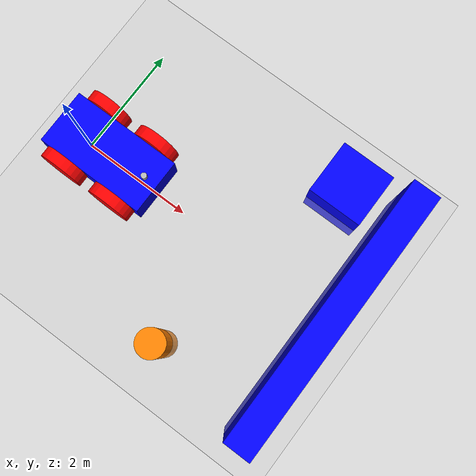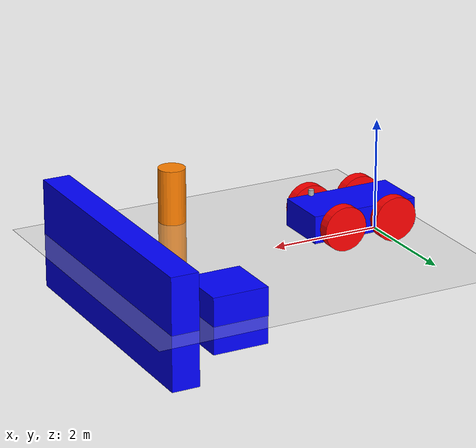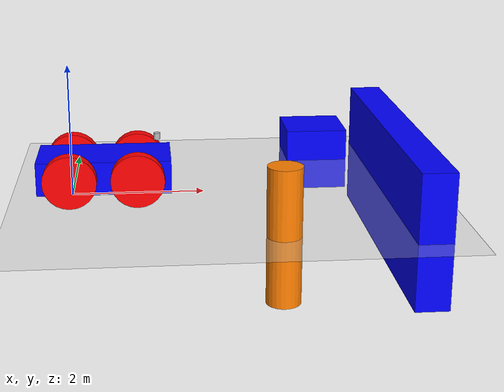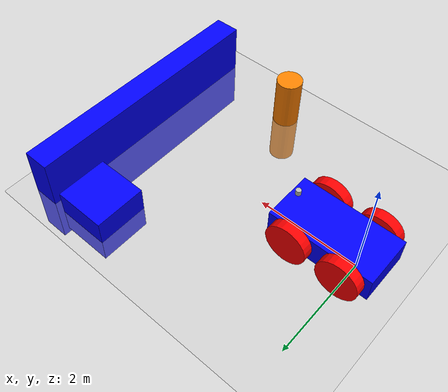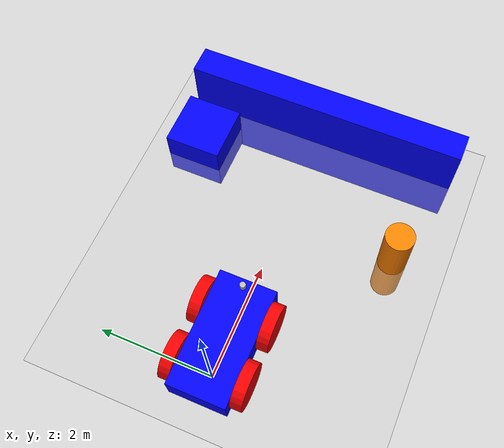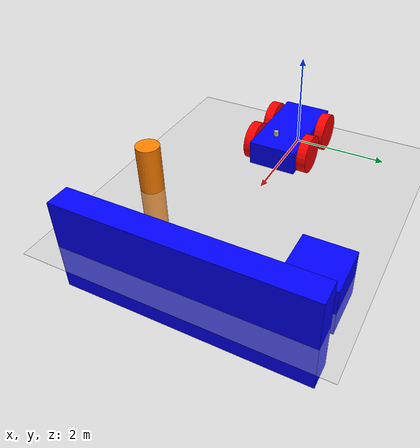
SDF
<?xml version="1.0" ?>
<sdf version="1.10">
    <world name="car_world">
        <physics name="1ms" type="ignored">
            <max_step_size>0.001</max_step_size>
            <real_time_factor>1.0</real_time_factor>
        </physics>

        <plugin filename="gz-sim-physics-system" name="gz::sim::systems::Physics">
        </plugin>
        <plugin filename="gz-sim-user-commands-system" name="gz::sim::systems::UserCommands">
        </plugin>
        <plugin filename="gz-sim-scene-broadcaster-system" name="gz::sim::systems::SceneBroadcaster">
        </plugin>
        <plugin filename="gz-sim-triggered-publisher-system"
            name="gz::sim::systems::TriggeredPublisher">
                <input type="gz.msgs.Int32" topic="/keyboard/keypress">
                    <match field="data">16777235</match>
                </input>
                <output type="gz.msgs.Twist" topic="/cmd_vel">
                    linear: {x: 0.5}, angular: {z: 0.0}
                </output>
        </plugin>
        <plugin filename="gz-sim-sensors-system" name="gz::sim::systems::Sensors">
        <render_engine>ogre2</render_engine>
        </plugin>

        <!-- Moving Backward-->
        <plugin filename="gz-sim-triggered-publisher-system"
                name="gz::sim::systems::TriggeredPublisher">
            <input type="gz.msgs.Int32" topic="/keyboard/keypress">
                <match field="data">16777237</match>
            </input>
            <output type="gz.msgs.Twist" topic="/cmd_vel">
                linear: {x: -0.5}, angular: {z: 0.0}
            </output>
        </plugin>

        <!-- Moving Forward-->
        <plugin filename="gz-sim-triggered-publisher-system"
                name="gz::sim::systems::TriggeredPublisher">
            <input type="gz.msgs.Int32" topic="/keyboard/keypress">
                <match field="data">16777235</match>
            </input>
            <output type="gz.msgs.Twist" topic="/cmd_vel">
                linear: {x: 0.5}, angular: {z: 0.0}
            </output>
        </plugin>

        <!-- Moving Left-->
        <plugin filename="gz-sim-triggered-publisher-system"
                name="gz::sim::systems::TriggeredPublisher">
            <input type="gz.msgs.Int32" topic="/keyboard/keypress">
                <match field="data">16777234</match>
            </input>
            <output type="gz.msgs.Twist" topic="/cmd_vel">
                linear: {x: 0.0}, angular: {z: 0.5}
            </output>
        </plugin>

        <!-- Moving Right-->
        <plugin filename="gz-sim-triggered-publisher-system"
                name="gz::sim::systems::TriggeredPublisher">
            <input type="gz.msgs.Int32" topic="/keyboard/keypress">
                <match field="data">16777236</match>
            </input>
            <output type="gz.msgs.Twist" topic="/cmd_vel">
                linear: {x: 0.0}, angular: {z: -0.5}
            </output>
        </plugin>

        <light type="directional" name="sun">
            <cast_shadows>true</cast_shadows>
            <pose>0 0 10 0 0 0</pose>
            <diffuse>0.8 0.8 0.8 1</diffuse>
            <specular>0.2 0.2 0.2 1</specular>
            <attenuation>
                <range>1000</range>
                <constant>0.9</constant>
                <linear>0.01</linear>
                <quadratic>0.001</quadratic>
            </attenuation>
            <direction>-0.5 0.1 -0.9</direction>
        </light>

        <model name="ground_plane">
            <static>true</static>
            <link name="link">
                <collision name="collision">
                <geometry>
                    <plane>
                    <normal>0 0 1</normal>
                    </plane>
                </geometry>
                </collision>
                <visual name="visual">
                <geometry>
                    <plane>
                    <normal>0 0 1</normal>
                    <size>100 100</size>
                    </plane>
                </geometry>
                <material>
                    <ambient>0.8 0.8 0.8 1</ambient>
                    <diffuse>0.8 0.8 0.8 1</diffuse>
                    <specular>0.8 0.8 0.8 1</specular>
                </material>
                </visual>
            </link>
        </model>

        <model name='wall'>
            <static>true</static>
            <pose>5 0 0 0 0 0</pose><!--pose relative to the world-->
            <link name='box'>
                <visual name='visual'>
                    <geometry>
                        <box>
                            <size>0.5 5.0 2.0</size>
                        </box>
                    </geometry>

                    <!--let's add color to our link-->
                    <material>
                        <ambient>0.0 0.0 1.0 1</ambient>
                        <diffuse>0.0 0.0 1.0 1</diffuse>
                        <specular>0.0 0.0 1.0 1</specular>
                    </material>
                </visual>

                <collision name='collision'>
                    <geometry>
                        <box>
                            <size>0.5 5.0 2.0</size>
                        </box>
                    </geometry>
                </collision>
            </link>
        </model>

        <model name='big_cylinder'>
            <static>true</static>
            <pose>3 -2 0 0 0 0</pose>
            <link name='cylinder'>
                <visual name='visual'>
                    <geometry>
                        <cylinder>
                            <radius>0.25</radius>
                            <length>2.0</length>
                        </cylinder>
                    </geometry>

                    <!--color-->
                    <material>
                        <ambient>1.0 0.5 0.0 1</ambient>
                        <diffuse>1.0 0.5 0.0 1</diffuse>
                        <specular>1.0 0.5 0.0 1</specular>
                    </material>
                </visual>

                <collision name='collision'>
                    <geometry>
                        <cylinder>
                            <radius>0.25</radius>
                            <length>2.0</length>
                        </cylinder>
                    </geometry>
                </collision>
            </link>
        </model>

        <model name='big_box'>
            <static>true</static>
            <pose>4 2 0 0 0 0</pose><!--pose relative to the world-->
            <link name='box'>
                <visual name='visual'>
                    <geometry>
                        <box>
                            <size>1 1 1</size>
                        </box>
                    </geometry>

                    <!--let's add color to our link-->
                    <material>
                        <ambient>0.0 0.0 1.0 1</ambient>
                        <diffuse>0.0 0.0 1.0 1</diffuse>
                        <specular>0.0 0.0 1.0 1</specular>
                    </material>
                </visual>

                <collision name='collision'>
                    <geometry>
                        <box>
                            <size>0.5 10.0 2.0</size>
                        </box>
                    </geometry>
                </collision>
            </link>
        </model>

        <model name="vehicle_blue" canonical_link="chassis">
            <pose relative_to="world">0 0 0 0 0 0</pose>

            <plugin filename="gz-sim-diff-drive-system" name="gz::sim::systems::DiffDrive">
                <left_joint>left_rear_wheel_joint</left_joint>
                <left_joint>left_front_wheel_joint</left_joint>
                <right_joint>right_rear_wheel_joint</right_joint>
                <right_joint>right_front_wheel_joint</right_joint>
                <wheel_separation>1.2</wheel_separation>
                <wheel_radius>0.4</wheel_radius>
                <odom_publish_frequency>1</odom_publish_frequency>
                <topic>cmd_vel</topic>
            </plugin>

            <!-- lidar -->
            <link name='lidar_link'>
                <pose relative_to='chassis'>0.8 0 0.5 0 0 0</pose>
                <inertial>
                    <mass>0.1</mass>
                    <inertia>
                        <ixx>0.000166667</ixx>
                        <iyy>0.000166667</iyy>
                        <izz>0.000166667</izz>
                    </inertia>
                </inertial>
                <visual name='visual'>
                    <geometry>
                        <cylinder>
                            <radius>0.05</radius>
                            <length>0.1</length>
                        </cylinder>
                    </geometry>
                </visual>
                <sensor name='gpu_lidar' type='gpu_lidar'>
                    <topic>lidar</topic>
                    <update_rate>10</update_rate>
                    <always_on>true</always_on>
                    <lidar>
                        <scan>
                            <horizontal>
                                <samples>640</samples>
                                <resolution>1</resolution>
                                <min_angle>-1.396263</min_angle>
                                <max_angle>1.396263</max_angle>
                            </horizontal>
                        </scan>
                        <range>
                            <min>0.08</min>
                            <max>10.0</max>
                        </range>
                    </lidar>
                    <visualize>true</visualize>
                </sensor>

            </link>

            <joint name='lidar_joint' type='fixed'>
                <parent>chassis</parent>
                <child>lidar_link</child>
            </joint>

            <!-- chassis -->
            <link name="chassis">
                <pose relative_to="__model__">0.5 0 0.4 0 0 0</pose>

                <inertial>
                    <mass>1.14395</mass>
                    <inertia>
                        <ixx>0.095329</ixx>
                        <ixy>0</ixy>
                        <ixz>0</ixz>
                        <iyy>0.381317</iyy>
                        <iyz>0</iyz>
                        <izz>0.476646</izz>
                    </inertia>
                </inertial>

                <visual name="visual">
                    <geometry>
                        <box>
                            <size>2.0 1.0 0.5</size>
                        </box>
                    </geometry>
                    <material>
                        <ambient>0.0 0.0 1.0 1</ambient>
                        <diffuse>0.0 0.0 1.0 1</diffuse>
                        <specular>0.0 0.0 1.0 1</specular>
                    </material>
                </visual>

                <collision name="collision">
                    <geometry>
                        <box>
                            <size>2.0 1.0 0.5</size>
                        </box>
                    </geometry>
                </collision>

            </link>

            <!-- left rear wheel -->
            <link name="left_rear_wheel">
                <pose relative_to="chassis">-0.5 0.6 0 -1.5707 0 0</pose>

                <inertial>
                    <mass>1</mass>
                    <inertia>
                        <ixx>0.043333</ixx>
                        <ixy>0</ixy>
                        <ixz>0</ixz>
                        <iyy>0.043333</iyy>
                        <iyz>0</iyz>
                        <izz>0.08</izz>
                    </inertia>
                </inertial>

                <visual name="visual">
                    <geometry>
                        <cylinder>
                            <radius>0.4</radius>
                            <length>0.2</length>
                        </cylinder>
                    </geometry>
                    <material>
                        <ambient>1.0 0.0 0.0 1</ambient>
                        <diffuse>1.0 0.0 0.0 1</diffuse>
                        <specular>1.0 0.0 0.0 1</specular>
                    </material>
                </visual>

                <collision name="collision">
                    <geometry>
                        <cylinder>
                            <radius>0.4</radius>
                            <length>0.2</length>
                        </cylinder>
                    </geometry>
                </collision>
            </link>

            <!-- left front wheel -->
            <link name="left_front_wheel">
                <pose relative_to="chassis">0.5 0.6 0 -1.5707 0 0</pose>

                <inertial>
                    <mass>1</mass>
                    <inertia>
                        <ixx>0.043333</ixx>
                        <ixy>0</ixy>
                        <ixz>0</ixz>
                        <iyy>0.043333</iyy>
                        <iyz>0</iyz>
                        <izz>0.08</izz>
                    </inertia>
                </inertial>

                <visual name="visual">
                    <geometry>
                        <cylinder>
                            <radius>0.4</radius>
                            <length>0.2</length>
                        </cylinder>
                    </geometry>
                    <material>
                        <ambient>1.0 0.0 0.0 1</ambient>
                        <diffuse>1.0 0.0 0.0 1</diffuse>
                        <specular>1.0 0.0 0.0 1</specular>
                    </material>
                </visual>

                <collision name="collision">
                    <geometry>
                        <cylinder>
                            <radius>0.4</radius>
                            <length>0.2</length>
                        </cylinder>
                    </geometry>
                </collision>
            </link>

            <!-- right rear wheel -->
            <link name="right_rear_wheel">
                <pose relative_to="chassis">-0.5 -0.6 0 -1.5707 0 0</pose>

                <inertial>
                    <mass>1</mass>
                    <inertia>
                        <ixx>0.043333</ixx>
                        <ixy>0</ixy>
                        <ixz>0</ixz>
                        <iyy>0.043333</iyy>
                        <iyz>0</iyz>
                        <izz>0.08</izz>
                    </inertia>
                </inertial>

                <visual name="visual">
                    <geometry>
                        <cylinder>
                            <radius>0.4</radius>
                            <length>0.2</length>
                        </cylinder>
                    </geometry>
                    <material>
                        <ambient>1.0 0.0 0.0 1</ambient>
                        <diffuse>1.0 0.0 0.0 1</diffuse>
                        <specular>1.0 0.0 0.0 1</specular>
                    </material>
                </visual>

                <collision name="collision">
                    <geometry>
                        <cylinder>
                            <radius>0.4</radius>
                            <length>0.2</length>
                        </cylinder>
                    </geometry>
                </collision>
            </link>

            <!-- right front wheel -->
            <link name="right_front_wheel">
                <pose relative_to="chassis">0.5 -0.6 0 -1.5707 0 0</pose>

                <inertial>
                    <mass>1</mass>
                    <inertia>
                        <ixx>0.043333</ixx>
                        <ixy>0</ixy>
                        <ixz>0</ixz>
                        <iyy>0.043333</iyy>
                        <iyz>0</iyz>
                        <izz>0.08</izz>
                    </inertia>
                </inertial>

                <visual name="visual">
                    <geometry>
                        <cylinder>
                            <radius>0.4</radius>
                            <length>0.2</length>
                        </cylinder>
                    </geometry>
                    <material>
                        <ambient>1.0 0.0 0.0 1</ambient>
                        <diffuse>1.0 0.0 0.0 1</diffuse>
                        <specular>1.0 0.0 0.0 1</specular>
                    </material>
                </visual>

                <collision name="collision">
                    <geometry>
                        <cylinder>
                            <radius>0.4</radius>
                            <length>0.2</length>
                        </cylinder>
                    </geometry>
                </collision>
            </link>

            <!-- left rear wheel joint -->
            <joint name="left_rear_wheel_joint" type="revolute">
                <pose relative_to="left_rear_wheel"/>
                <parent>chassis</parent>
                <child>left_rear_wheel</child>
                <axis>
                    <xyz expressed_in="__model__">0 1 0</xyz>
                    <!-- can be defined as any frame or even arbitrary frames -->
                    <limit>
                        <lower>-1.79769e+308</lower>
                        <!-- negative infinity -->
                        <upper>1.79769e+308</upper>
                        <!-- positive infinity -->
                    </limit>
                </axis>
            </joint>

            <!-- left front wheel joint -->
            <joint name="left_front_wheel_joint" type="revolute">
                <pose relative_to="left_front_wheel"/>
                <parent>chassis</parent>
                <child>left_front_wheel</child>
                <axis>
                    <xyz expressed_in="__model__">0 1 0</xyz>
                    <!-- can be defined as any frame or even arbitrary frames -->
                    <limit>
                        <lower>-1.79769e+308</lower>
                        <!-- negative infinity -->
                        <upper>1.79769e+308</upper>
                        <!-- positive infinity -->
                    </limit>
                </axis>
            </joint>

            <!-- right rear wheel joint -->
            <joint name="right_rear_wheel_joint" type="revolute">
                <pose relative_to="right_rear_wheel"/>
                <parent>chassis</parent>
                <child>right_rear_wheel</child>
                <axis>
                    <xyz expressed_in="__model__">0 1 0</xyz>
                    <limit>
                        <lower>-1.79769e+308</lower>
                        <!-- negative infinity -->
                        <upper>1.79769e+308</upper>
                        <!-- positive infinity -->
                    </limit>
                </axis>
            </joint>

            <!-- right front wheel joint -->
            <joint name="right_front_wheel_joint" type="revolute">
                <pose relative_to="right_front_wheel"/>
                <parent>chassis</parent>
                <child>right_front_wheel</child>
                <axis>
                    <xyz expressed_in="__model__">0 1 0</xyz>
                    <limit>
                        <lower>-1.79769e+308</lower>
                        <!-- negative infinity -->
                        <upper>1.79769e+308</upper>
                        <!-- positive infinity -->
                    </limit>
                </axis>
            </joint>

        </model>
    </world>

</sdf>
